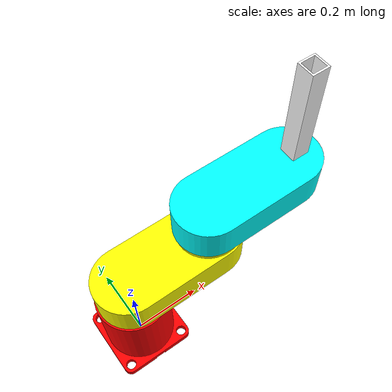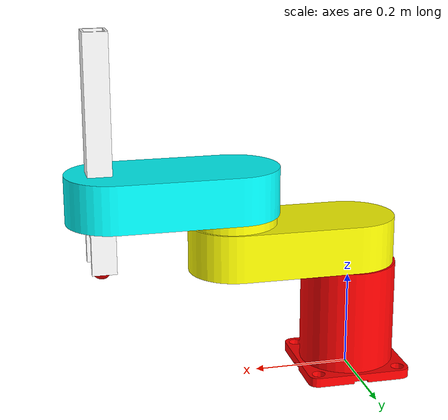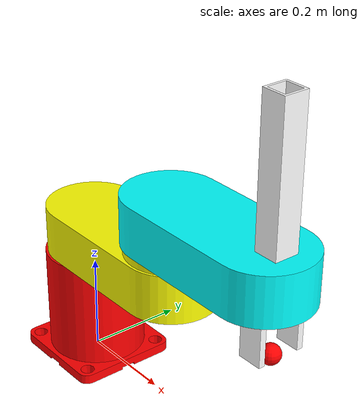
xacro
<?xml version="1.0"?>
<robot name="myrobot" xmlns:xacro="http://ros.org/wiki/xacro">

  <link name="world"/>

  <joint name="world_joint" type="fixed">
    <parent link="world"/>
    <child link="base_link"/>
    <origin xyz="0 0 0" rpy="0 0 0"/>
  </joint>

  <link name="base_link">
    <inertial>
      <origin xyz="0 0 0.09" rpy="0 0 0"/>
      <mass value="1.0"/> <inertia ixx="0.1" iyy="0.1" izz="0.1" ixy="0" ixz="0" iyz="0"/>
    </inertial>
    <visual>
      <geometry><mesh filename="package://myrobot/meshes/base_link.STL"/></geometry>
      <material name="red"><color rgba="1.0 0.0 0.0 1.0"/></material>
    </visual>
    </link>

  <joint name="J1" type="revolute">
    <origin xyz="0 0 0.215" rpy="0 0 0"/>
    <parent link="base_link"/>
    <child link="L1"/>
    <axis xyz="0 0 1"/>
    <limit lower="-3.14" upper="3.14" effort="1000" velocity="15.0"/>
  </joint>

  <link name="L1">
    <inertial>
      <origin xyz="0.12 0 0.07" rpy="0 0 0"/>
      <mass value="0.1"/>
      <inertia ixx="0.01" iyy="0.01" izz="0.01" ixy="0" ixz="0" iyz="0"/>
    </inertial>
    <visual>
      <geometry><mesh filename="package://myrobot/meshes/L1.STL"/></geometry>
      <material name="yellow"><color rgba="1.0 1.0 0.0 1.0"/></material>
    </visual>
  </link>

  <joint name="J2" type="revolute">
    <origin xyz="0.25 0 0.12" rpy="0 0 0"/>
    <parent link="L1"/>
    <child link="L2"/>
    <axis xyz="0 0 1"/>
    <limit lower="-3.14" upper="3.14" effort="1000" velocity="15.0"/>
  </joint>

  <link name="L2">
    <inertial>
      <origin xyz="0.12 0 0.07" rpy="0 0 0"/>
      <mass value="0.1"/>
      <inertia ixx="0.01" iyy="0.01" izz="0.01" ixy="0" ixz="0" iyz="0"/>
    </inertial>
    <visual>
      <geometry><mesh filename="package://myrobot/meshes/L2.STL"/></geometry>
      <material name="cyan"><color rgba="0.0 1.0 1.0 1.0"/></material>
    </visual>
  </link>

  <joint name="J3" type="prismatic">
    <origin xyz="0.275 0 0.0" rpy="0 0 0"/>
    <parent link="L2"/>
    <child link="L3"/>
    <axis xyz="0 0 -1"/>
    <limit lower="0" upper="0.12" effort="500" velocity="20.0"/>
  </joint>

  <link name="L3">
    <inertial>
      <origin xyz="0 0 0.05" rpy="0 0 0"/>
      <mass value="0.1"/>
      <inertia ixx="0.001" iyy="0.001" izz="0.001" ixy="0" ixz="0" iyz="0"/>
    </inertial>
    <visual>
      <geometry><mesh filename="package://myrobot/meshes/L3.STL"/></geometry>
      <material name="white"><color rgba="1.0 1.0 1.0 1.0"/></material>
    </visual>
  </link>

  <joint name="ee_fixed_joint" type="fixed">
    <parent link="L3"/>
    <child link="ee_marker"/>
    <origin xyz="0 0 -0.08" rpy="0 0 0"/>
  </joint>

  <link name="ee_marker">
    <inertial>
      <mass value="0.001"/>
      <inertia ixx="0.0001" iyy="0.0001" izz="0.0001" ixy="0" ixz="0" iyz="0"/>
    </inertial>
    <visual>
      <geometry><sphere radius="0.02"/></geometry>
      <material name="red"><color rgba="1.0 0.0 0.0 1.0"/></material>
    </visual>
  </link>

  <ros2_control name="GazeboSystem" type="system">
    <hardware>
      <plugin>gazebo_ros2_control/GazeboSystem</plugin>
    </hardware>
    <joint name="J1">
      <command_interface name="position"/>
      <state_interface name="position"/>
    </joint>
    <joint name="J2">
      <command_interface name="position"/>
      <state_interface name="position"/>
    </joint>
    <joint name="J3">
      <command_interface name="position"/>
      <state_interface name="position"/>
    </joint>
  </ros2_control>

  <gazebo>
    <plugin filename="libgazebo_ros2_control.so" name="gazebo_ros2_control">
      <parameters>$(find myrobot)/config/pid_params.yaml</parameters>
    </plugin>
  </gazebo>

  <gazebo reference="base_link"><gravity>0</gravity><material>Gazebo/Red</material></gazebo>
  <gazebo reference="L1"><gravity>0</gravity><material>Gazebo/Yellow</material></gazebo>
  <gazebo reference="L2"><gravity>0</gravity><material>Gazebo/Cyan</material></gazebo>
  <gazebo reference="L3"><gravity>0</gravity><material>Gazebo/White</material></gazebo>
  <gazebo reference="ee_marker"><gravity>0</gravity><material>Gazebo/Red</material></gazebo>
<gazebo>
</gazebo>
</robot>
